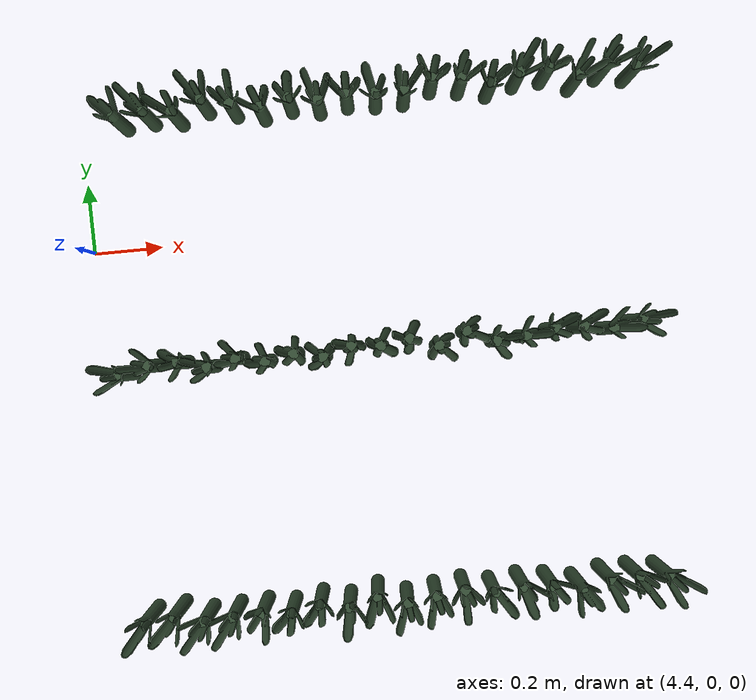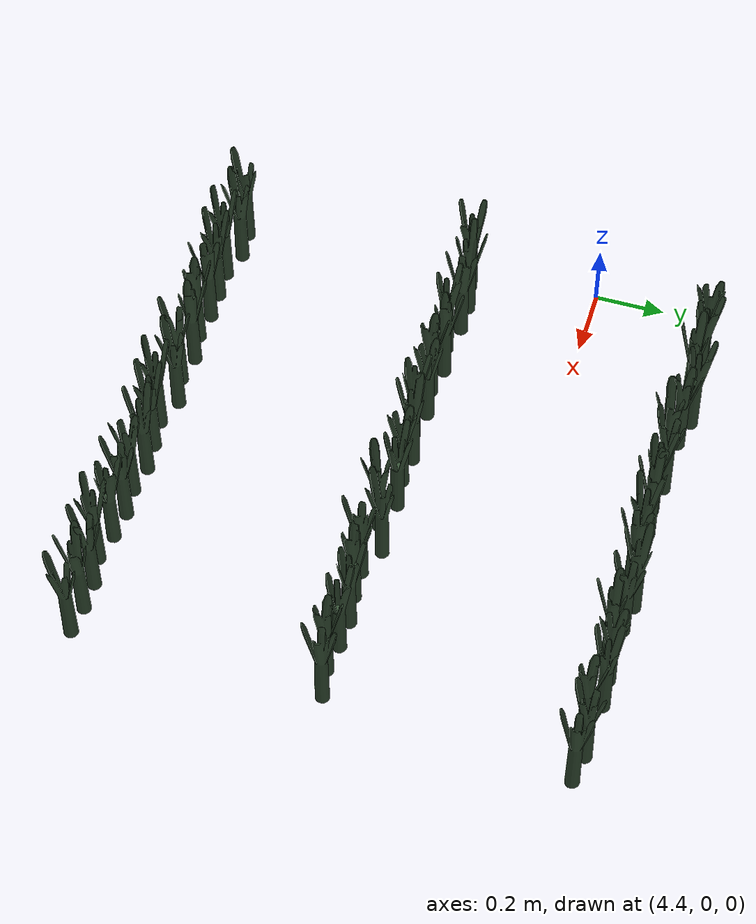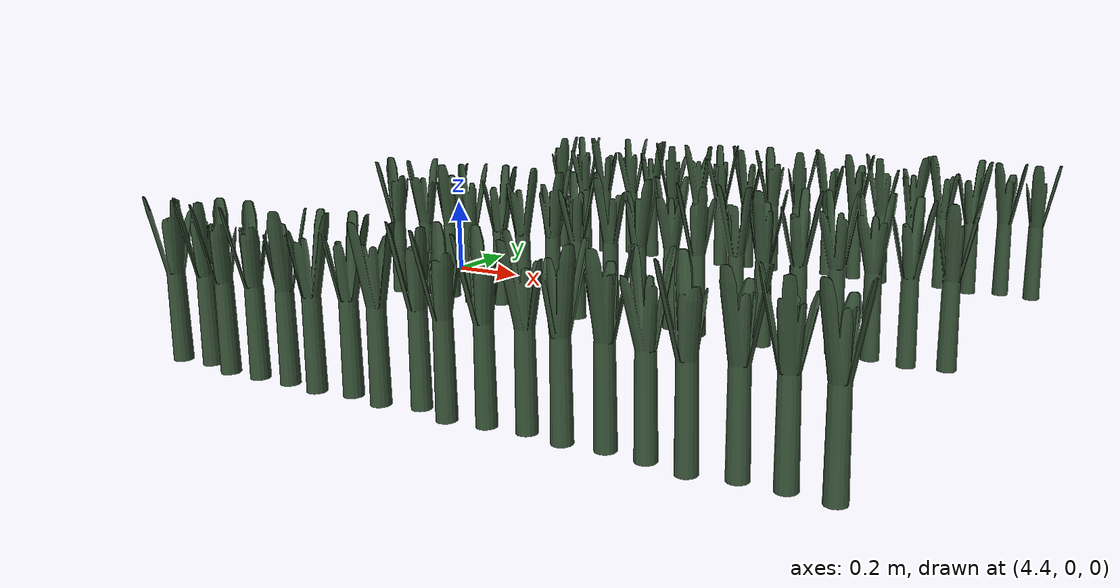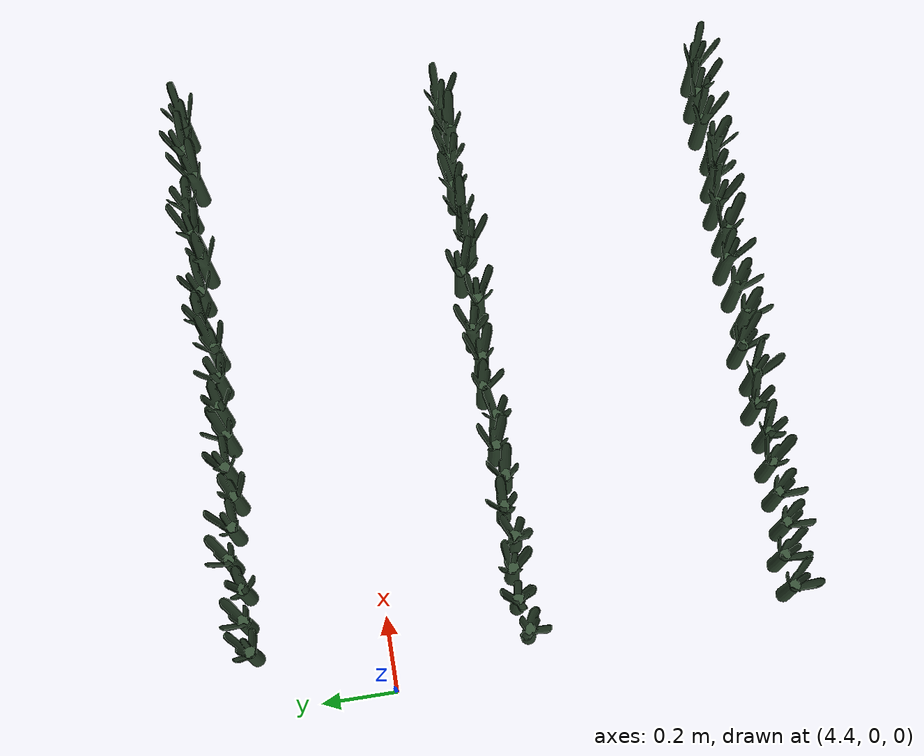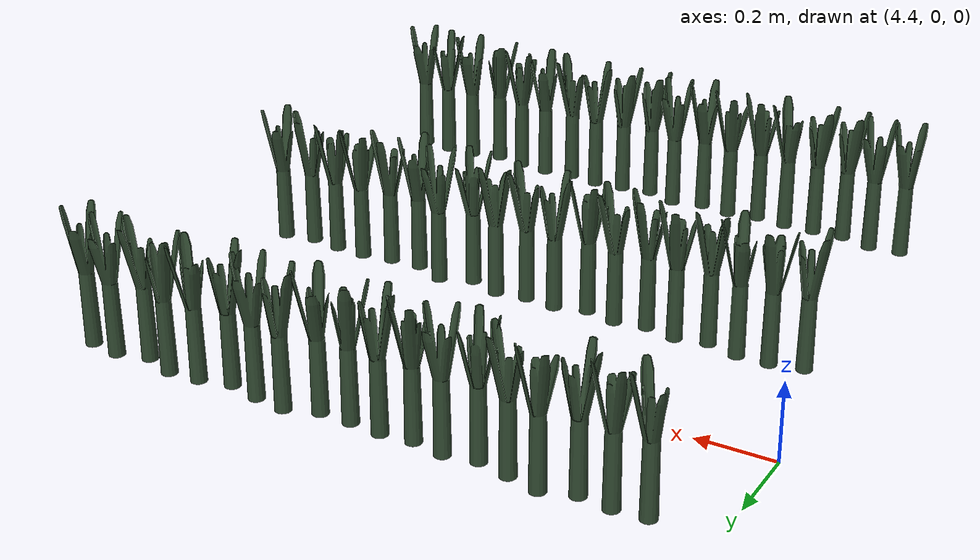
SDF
<sdf version="1.6">
 <world name="default">
  <include><uri>model://Leek</uri><pose>4.540000 0.346422 0.15 0 0 -32.199014</pose><static>0</static></include>
  <include><uri>model://Leek</uri><pose>4.620000 0.352866 0.15 0 0 25.795595</pose><static>0</static></include>
  <include><uri>model://Leek</uri><pose>4.700000 0.344052 0.15 0 0 -53.531413</pose><static>0</static></include>
  <include><uri>model://Leek</uri><pose>4.780000 0.369625 0.15 0 0 176.620645</pose><static>0</static></include>
  <include><uri>model://Leek</uri><pose>4.860000 0.351350 0.15 0 0 12.146040</pose><static>0</static></include>
  <include>
   <uri>model://Leek</uri>
   <pose>4.940000 0.334334 0.15 0 0 -140.992049</pose>
   <static>0</static>
  </include>
  <include><uri>model://Leek</uri><pose>5.020000 0.349078 0.15 0 0 -8.297467</pose><static>0</static></include>
  <include>
   <uri>model://Leek</uri>
   <pose>5.100000 0.336090 0.15 0 0 -125.194032</pose>
   <static>0</static>
  </include>
  <include><uri>model://Leek</uri><pose>5.180000 0.344753 0.15 0 0 -47.226957</pose><static>0</static></include>
  <include>
   <uri>model://Leek</uri>
   <pose>5.260000 0.337673 0.15 0 0 -110.940917</pose>
   <static>0</static>
  </include>
  <include>
   <uri>model://Leek</uri>
   <pose>5.340000 0.337298 0.15 0 0 -114.313630</pose>
   <static>0</static>
  </include>
  <include><uri>model://Leek</uri><pose>5.420000 0.364975 0.15 0 0 134.773096</pose><static>0</static></include>
  <include><uri>model://Leek</uri><pose>5.500000 0.354687 0.15 0 0 42.183770</pose><static>0</static></include>
  <include>
   <uri>model://Leek</uri>
   <pose>5.580000 0.336385 0.15 0 0 -122.532322</pose>
   <static>0</static>
  </include>
  <include><uri>model://Leek</uri><pose>5.660000 0.356204 0.15 0 0 55.836077</pose><static>0</static></include>
  <include><uri>model://Leek</uri><pose>5.740000 0.361455 0.15 0 0 103.094459</pose><static>0</static></include>
  <include>
   <uri>model://Leek</uri>
   <pose>5.820000 0.332517 0.15 0 0 -157.351006</pose>
   <static>0</static>
  </include>
  <include><uri>model://Leek</uri><pose>5.900000 0.354675 0.15 0 0 42.073573</pose><static>0</static></include>
  <include><uri>model://Leek</uri><pose>5.980000 0.342155 0.15 0 0 -70.604505</pose><static>0</static></include>
  <include>
   <uri>model://Leek</uri>
   <pose>4.485438 -0.359490 0.15 0 0 -85.410500</pose>
   <static>0</static>
  </include>
  <include><uri>model://Leek</uri><pose>4.565438 -0.342846 0.15 0 0 64.382052</pose><static>0</static></include>
  <include><uri>model://Leek</uri><pose>4.645438 -0.341758 0.15 0 0 74.177116</pose><static>0</static></include>
  <include>
   <uri>model://Leek</uri>
   <pose>4.725438 -0.361762 0.15 0 0 -105.854939</pose>
   <static>0</static>
  </include>
  <include><uri>model://Leek</uri><pose>4.805438 -0.345792 0.15 0 0 37.869595</pose><static>0</static></include>
  <include>
   <uri>model://Leek</uri>
   <pose>4.885438 -0.361885 0.15 0 0 -106.962716</pose>
   <static>0</static>
  </include>
  <include><uri>model://Leek</uri><pose>4.965438 -0.348665 0.15 0 0 12.017574</pose><static>0</static></include>
  <include>
   <uri>model://Leek</uri>
   <pose>5.045438 -0.365288 0.15 0 0 -137.594878</pose>
   <static>0</static>
  </include>
  <include><uri>model://Leek</uri><pose>5.125438 -0.343393 0.15 0 0 59.459499</pose><static>0</static></include>
  <include><uri>model://Leek</uri><pose>5.205438 -0.350758 0.15 0 0 -6.823864</pose><static>0</static></include>
  <include><uri>model://Leek</uri><pose>5.285438 -0.339396 0.15 0 0 95.432076</pose><static>0</static></include>
  <include>
   <uri>model://Leek</uri>
   <pose>5.365438 -0.366337 0.15 0 0 -147.032879</pose>
   <static>0</static>
  </include>
  <include>
   <uri>model://Leek</uri>
   <pose>5.445438 -0.334191 0.15 0 0 142.279492</pose>
   <static>0</static>
  </include>
  <include>
   <uri>model://Leek</uri>
   <pose>5.525438 -0.369013 0.15 0 0 -171.114414</pose>
   <static>0</static>
  </include>
  <include>
   <uri>model://Leek</uri>
   <pose>5.605438 -0.363955 0.15 0 0 -125.593842</pose>
   <static>0</static>
  </include>
  <include>
   <uri>model://Leek</uri>
   <pose>5.685438 -0.352015 0.15 0 0 -18.137497</pose>
   <static>0</static>
  </include>
  <include>
   <uri>model://Leek</uri>
   <pose>5.765438 -0.354783 0.15 0 0 -43.046477</pose>
   <static>0</static>
  </include>
  <include>
   <uri>model://Leek</uri>
   <pose>5.845438 -0.365371 0.15 0 0 -138.341252</pose>
   <static>0</static>
  </include>
  <include>
   <uri>model://Leek</uri>
   <pose>5.925438 -0.351553 0.15 0 0 -13.973798</pose>
   <static>0</static>
  </include>
  <include><uri>model://Leek</uri><pose>4.489162 -1.039758 0.15 0 0 92.175258</pose><static>0</static></include>
  <include>
   <uri>model://Leek</uri>
   <pose>4.569162 -1.031412 0.15 0 0 167.288597</pose>
   <static>0</static>
  </include>
  <include>
   <uri>model://Leek</uri>
   <pose>4.649162 -1.053230 0.15 0 0 -29.065613</pose>
   <static>0</static>
  </include>
  <include><uri>model://Leek</uri><pose>4.729162 -1.049036 0.15 0 0 8.675604</pose><static>0</static></include>
  <include><uri>model://Leek</uri><pose>4.809162 -1.045916 0.15 0 0 36.754610</pose><static>0</static></include>
  <include>
   <uri>model://Leek</uri>
   <pose>4.889162 -1.054174 0.15 0 0 -37.561728</pose>
   <static>0</static>
  </include>
  <include><uri>model://Leek</uri><pose>4.969162 -1.039490 0.15 0 0 94.593073</pose><static>0</static></include>
  <include>
   <uri>model://Leek</uri>
   <pose>5.049162 -1.052281 0.15 0 0 -20.529862</pose>
   <static>0</static>
  </include>
  <include>
   <uri>model://Leek</uri>
   <pose>5.129162 -1.032099 0.15 0 0 161.105047</pose>
   <static>0</static>
  </include>
  <include>
   <uri>model://Leek</uri>
   <pose>5.209162 -1.058813 0.15 0 0 -79.315959</pose>
   <static>0</static>
  </include>
  <include><uri>model://Leek</uri><pose>5.289162 -1.048333 0.15 0 0 15.001532</pose><static>0</static></include>
  <include><uri>model://Leek</uri><pose>5.369162 -1.039908 0.15 0 0 90.830482</pose><static>0</static></include>
  <include>
   <uri>model://Leek</uri>
   <pose>5.449162 -1.052165 0.15 0 0 -19.487410</pose>
   <static>0</static>
  </include>
  <include><uri>model://Leek</uri><pose>5.529162 -1.043879 0.15 0 0 55.086955</pose><static>0</static></include>
  <include>
   <uri>model://Leek</uri>
   <pose>5.609162 -1.051303 0.15 0 0 -11.727711</pose>
   <static>0</static>
  </include>
  <include>
   <uri>model://Leek</uri>
   <pose>5.689162 -1.065813 0.15 0 0 -142.317515</pose>
   <static>0</static>
  </include>
  <include><uri>model://Leek</uri><pose>5.769162 -1.048789 0.15 0 0 10.902952</pose><static>0</static></include>
  <include><uri>model://Leek</uri><pose>5.849162 -1.048927 0.15 0 0 9.655432</pose><static>0</static></include>
  <include>
   <uri>model://Leek</uri>
   <pose>5.929162 -1.055787 0.15 0 0 -52.085356</pose>
   <static>0</static>
  </include>
 </world>
</sdf>
